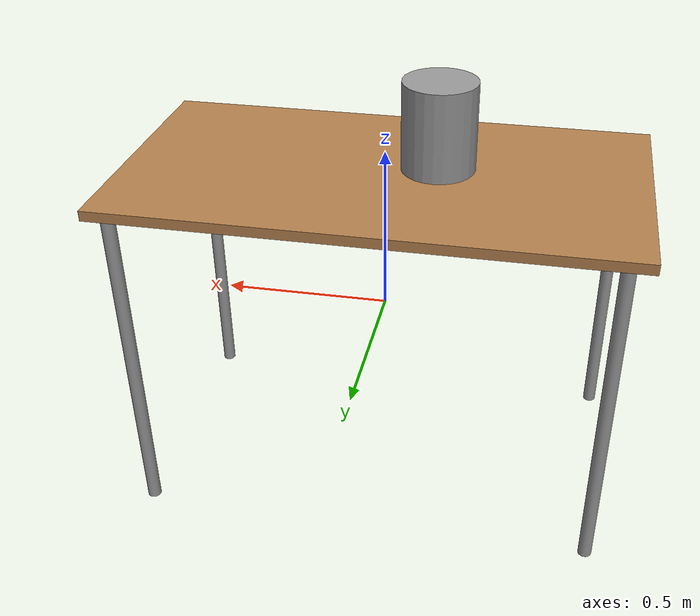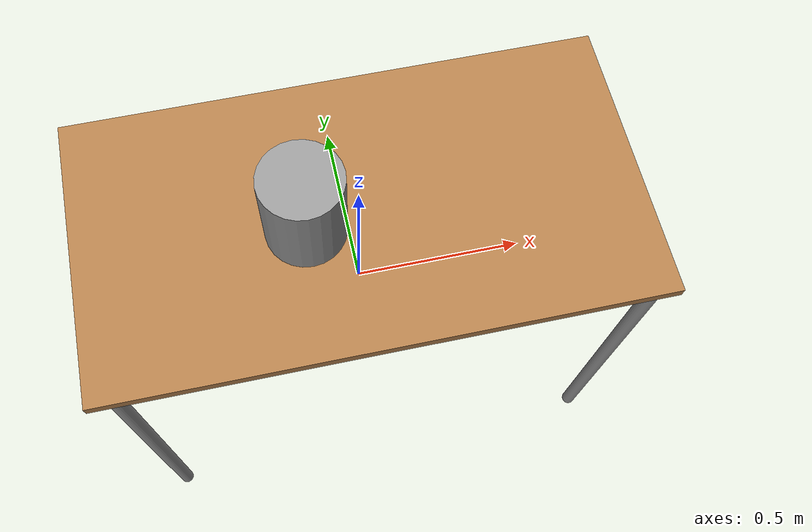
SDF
<?xml version='1.0'?>
<sdf version='1.7'>
  <model name='table'>
    <link name='link'>
      <self_collide>0</self_collide>
      <enable_wind>0</enable_wind>
      <kinematic>0</kinematic>
      <pose>0 0 -0.57074 0 -0 0</pose>
      <visual name='visual1'>
        <pose>0 0 1 0 -0 0</pose>
        <geometry>
          <box>
            <size>1.5 0.8 0.03</size>
          </box>
        </geometry>
        <material>
          <script>
            <uri>file://media/materials/scripts/gazebo.material</uri>
            <name>Gazebo/Wood</name>
          </script>
          <shader type='pixel'/>
        </material>
        <transparency>0</transparency>
        <cast_shadows>1</cast_shadows>
      </visual>
      <visual name='front_left_leg'>
        <pose>0.68 0.38 0.5 0 -0 0</pose>
        <geometry>
          <cylinder>
            <radius>0.02</radius>
            <length>1</length>
          </cylinder>
        </geometry>
        <material>
          <script>
            <uri>file://media/materials/scripts/gazebo.material</uri>
            <name>Gazebo/Grey</name>
          </script>
          <shader type='pixel'/>
        </material>
        <transparency>0</transparency>
        <cast_shadows>1</cast_shadows>
      </visual>
      <visual name='front_right_leg'>
        <pose>0.68 -0.38 0.5 0 -0 0</pose>
        <geometry>
          <cylinder>
            <radius>0.02</radius>
            <length>1</length>
          </cylinder>
        </geometry>
        <material>
          <script>
            <uri>file://media/materials/scripts/gazebo.material</uri>
            <name>Gazebo/Grey</name>
          </script>
          <shader type='pixel'/>
        </material>
        <transparency>0</transparency>
        <cast_shadows>1</cast_shadows>
      </visual>
      <visual name='back_right_leg'>
        <pose>-0.68 -0.38 0.5 0 -0 0</pose>
        <geometry>
          <cylinder>
            <radius>0.02</radius>
            <length>1</length>
          </cylinder>
        </geometry>
        <material>
          <script>
            <uri>file://media/materials/scripts/gazebo.material</uri>
            <name>Gazebo/Grey</name>
          </script>
          <shader type='pixel'/>
        </material>
        <transparency>0</transparency>
        <cast_shadows>1</cast_shadows>
      </visual>
      <visual name='back_left_leg'>
        <pose>-0.68 0.38 0.5 0 -0 0</pose>
        <geometry>
          <cylinder>
            <radius>0.02</radius>
            <length>1</length>
          </cylinder>
        </geometry>
        <material>
          <script>
            <uri>file://media/materials/scripts/gazebo.material</uri>
            <name>Gazebo/Grey</name>
          </script>
          <shader type='pixel'/>
        </material>
        <transparency>0</transparency>
        <cast_shadows>1</cast_shadows>
      </visual>
      <collision name='surface'>
        <laser_retro>0</laser_retro>
        <max_contacts>10</max_contacts>
        <pose>0 0 1 0 -0 0</pose>
        <geometry>
          <box>
            <size>1.5 0.8 0.03</size>
          </box>
        </geometry>
        <surface>
          <friction>
            <ode>
              <mu>0.6</mu>
              <mu2>0.6</mu2>
              <fdir1>0 0 0</fdir1>
              <slip1>0</slip1>
              <slip2>0</slip2>
            </ode>
            <torsional>
              <coefficient>1</coefficient>
              <patch_radius>0</patch_radius>
              <surface_radius>0</surface_radius>
              <use_patch_radius>1</use_patch_radius>
              <ode>
                <slip>0</slip>
              </ode>
            </torsional>
          </friction>
          <bounce>
            <restitution_coefficient>0</restitution_coefficient>
            <threshold>1e+06</threshold>
          </bounce>
          <contact>
            <collide_without_contact>0</collide_without_contact>
            <collide_without_contact_bitmask>1</collide_without_contact_bitmask>
            <collide_bitmask>1</collide_bitmask>
            <ode>
              <soft_cfm>0</soft_cfm>
              <soft_erp>0.2</soft_erp>
              <kp>1e+13</kp>
              <kd>1</kd>
              <max_vel>0.01</max_vel>
              <min_depth>0</min_depth>
            </ode>
            <bullet>
              <split_impulse>1</split_impulse>
              <split_impulse_penetration_threshold>-0.01</split_impulse_penetration_threshold>
              <soft_cfm>0</soft_cfm>
              <soft_erp>0.2</soft_erp>
              <kp>1e+13</kp>
              <kd>1</kd>
            </bullet>
          </contact>
        </surface>
      </collision>
      <collision name='front_left_leg'>
        <laser_retro>0</laser_retro>
        <max_contacts>10</max_contacts>
        <pose>0.68 0.38 0.5 0 -0 0</pose>
        <geometry>
          <cylinder>
            <radius>0.02</radius>
            <length>1</length>
          </cylinder>
        </geometry>
        <surface>
          <friction>
            <ode>
              <mu>1</mu>
              <mu2>1</mu2>
              <fdir1>0 0 0</fdir1>
              <slip1>0</slip1>
              <slip2>0</slip2>
            </ode>
            <torsional>
              <coefficient>1</coefficient>
              <patch_radius>0</patch_radius>
              <surface_radius>0</surface_radius>
              <use_patch_radius>1</use_patch_radius>
              <ode>
                <slip>0</slip>
              </ode>
            </torsional>
          </friction>
          <bounce>
            <restitution_coefficient>0</restitution_coefficient>
            <threshold>1e+06</threshold>
          </bounce>
          <contact>
            <collide_without_contact>0</collide_without_contact>
            <collide_without_contact_bitmask>1</collide_without_contact_bitmask>
            <collide_bitmask>1</collide_bitmask>
            <ode>
              <soft_cfm>0</soft_cfm>
              <soft_erp>0.2</soft_erp>
              <kp>1e+13</kp>
              <kd>1</kd>
              <max_vel>0.01</max_vel>
              <min_depth>0</min_depth>
            </ode>
            <bullet>
              <split_impulse>1</split_impulse>
              <split_impulse_penetration_threshold>-0.01</split_impulse_penetration_threshold>
              <soft_cfm>0</soft_cfm>
              <soft_erp>0.2</soft_erp>
              <kp>1e+13</kp>
              <kd>1</kd>
            </bullet>
          </contact>
        </surface>
      </collision>
      <collision name='front_right_leg'>
        <laser_retro>0</laser_retro>
        <max_contacts>10</max_contacts>
        <pose>0.68 -0.38 0.5 0 -0 0</pose>
        <geometry>
          <cylinder>
            <radius>0.02</radius>
            <length>1</length>
          </cylinder>
        </geometry>
        <surface>
          <friction>
            <ode>
              <mu>1</mu>
              <mu2>1</mu2>
              <fdir1>0 0 0</fdir1>
              <slip1>0</slip1>
              <slip2>0</slip2>
            </ode>
            <torsional>
              <coefficient>1</coefficient>
              <patch_radius>0</patch_radius>
              <surface_radius>0</surface_radius>
              <use_patch_radius>1</use_patch_radius>
              <ode>
                <slip>0</slip>
              </ode>
            </torsional>
          </friction>
          <bounce>
            <restitution_coefficient>0</restitution_coefficient>
            <threshold>1e+06</threshold>
          </bounce>
          <contact>
            <collide_without_contact>0</collide_without_contact>
            <collide_without_contact_bitmask>1</collide_without_contact_bitmask>
            <collide_bitmask>1</collide_bitmask>
            <ode>
              <soft_cfm>0</soft_cfm>
              <soft_erp>0.2</soft_erp>
              <kp>1e+13</kp>
              <kd>1</kd>
              <max_vel>0.01</max_vel>
              <min_depth>0</min_depth>
            </ode>
            <bullet>
              <split_impulse>1</split_impulse>
              <split_impulse_penetration_threshold>-0.01</split_impulse_penetration_threshold>
              <soft_cfm>0</soft_cfm>
              <soft_erp>0.2</soft_erp>
              <kp>1e+13</kp>
              <kd>1</kd>
            </bullet>
          </contact>
        </surface>
      </collision>
      <collision name='back_right_leg'>
        <laser_retro>0</laser_retro>
        <max_contacts>10</max_contacts>
        <pose>-0.68 -0.38 0.5 0 -0 0</pose>
        <geometry>
          <cylinder>
            <radius>0.02</radius>
            <length>1</length>
          </cylinder>
        </geometry>
        <surface>
          <friction>
            <ode>
              <mu>1</mu>
              <mu2>1</mu2>
              <fdir1>0 0 0</fdir1>
              <slip1>0</slip1>
              <slip2>0</slip2>
            </ode>
            <torsional>
              <coefficient>1</coefficient>
              <patch_radius>0</patch_radius>
              <surface_radius>0</surface_radius>
              <use_patch_radius>1</use_patch_radius>
              <ode>
                <slip>0</slip>
              </ode>
            </torsional>
          </friction>
          <bounce>
            <restitution_coefficient>0</restitution_coefficient>
            <threshold>1e+06</threshold>
          </bounce>
          <contact>
            <collide_without_contact>0</collide_without_contact>
            <collide_without_contact_bitmask>1</collide_without_contact_bitmask>
            <collide_bitmask>1</collide_bitmask>
            <ode>
              <soft_cfm>0</soft_cfm>
              <soft_erp>0.2</soft_erp>
              <kp>1e+13</kp>
              <kd>1</kd>
              <max_vel>0.01</max_vel>
              <min_depth>0</min_depth>
            </ode>
            <bullet>
              <split_impulse>1</split_impulse>
              <split_impulse_penetration_threshold>-0.01</split_impulse_penetration_threshold>
              <soft_cfm>0</soft_cfm>
              <soft_erp>0.2</soft_erp>
              <kp>1e+13</kp>
              <kd>1</kd>
            </bullet>
          </contact>
        </surface>
      </collision>
      <collision name='back_left_leg'>
        <laser_retro>0</laser_retro>
        <max_contacts>10</max_contacts>
        <pose>-0.68 0.38 0.5 0 -0 0</pose>
        <geometry>
          <cylinder>
            <radius>0.02</radius>
            <length>1</length>
          </cylinder>
        </geometry>
        <surface>
          <friction>
            <ode>
              <mu>1</mu>
              <mu2>1</mu2>
              <fdir1>0 0 0</fdir1>
              <slip1>0</slip1>
              <slip2>0</slip2>
            </ode>
            <torsional>
              <coefficient>1</coefficient>
              <patch_radius>0</patch_radius>
              <surface_radius>0</surface_radius>
              <use_patch_radius>1</use_patch_radius>
              <ode>
                <slip>0</slip>
              </ode>
            </torsional>
          </friction>
          <bounce>
            <restitution_coefficient>0</restitution_coefficient>
            <threshold>1e+06</threshold>
          </bounce>
          <contact>
            <collide_without_contact>0</collide_without_contact>
            <collide_without_contact_bitmask>1</collide_without_contact_bitmask>
            <collide_bitmask>1</collide_bitmask>
            <ode>
              <soft_cfm>0</soft_cfm>
              <soft_erp>0.2</soft_erp>
              <kp>1e+13</kp>
              <kd>1</kd>
              <max_vel>0.01</max_vel>
              <min_depth>0</min_depth>
            </ode>
            <bullet>
              <split_impulse>1</split_impulse>
              <split_impulse_penetration_threshold>-0.01</split_impulse_penetration_threshold>
              <soft_cfm>0</soft_cfm>
              <soft_erp>0.2</soft_erp>
              <kp>1e+13</kp>
              <kd>1</kd>
            </bullet>
          </contact>
        </surface>
      </collision>
    </link>
    <link name='link_0'>
      <inertial>
        <mass>0.0119566</mass>
        <inertia>
          <ixx>0.000101162</ixx>
          <ixy>0</ixy>
          <ixz>0</ixz>
          <iyy>0.000101162</iyy>
          <iyz>0</iyz>
          <izz>6.91386e-05</izz>
        </inertia>
        <pose>0 0 0 0 -0 0</pose>
      </inertial>
      <pose>-0.146445 -0.038954 0.57403 0 -0 0</pose>
      <visual name='visual'>
        <pose>0 0 0 0 -0 0</pose>
        <geometry>
          <cylinder>
            <radius>0.10754</radius>
            <length>0.258524</length>
          </cylinder>
        </geometry>
        <material>
          <lighting>1</lighting>
          <script>
            <uri>file://media/materials/scripts/gazebo.material</uri>
            <name>Gazebo/Grey</name>
          </script>
          <shader type='pixel'/>
        </material>
        <transparency>0</transparency>
        <cast_shadows>1</cast_shadows>
      </visual>
      <collision name='collision'>
        <laser_retro>0</laser_retro>
        <max_contacts>10</max_contacts>
        <pose>0 0 0 0 -0 0</pose>
        <geometry>
          <cylinder>
            <radius>0.10754</radius>
            <length>0.258524</length>
          </cylinder>
        </geometry>
        <surface>
          <friction>
            <ode>
              <mu>1</mu>
              <mu2>1</mu2>
              <fdir1>0 0 0</fdir1>
              <slip1>0</slip1>
              <slip2>0</slip2>
            </ode>
            <torsional>
              <coefficient>1</coefficient>
              <patch_radius>0</patch_radius>
              <surface_radius>0</surface_radius>
              <use_patch_radius>1</use_patch_radius>
              <ode>
                <slip>0</slip>
              </ode>
            </torsional>
          </friction>
          <bounce>
            <restitution_coefficient>0</restitution_coefficient>
            <threshold>1e+06</threshold>
          </bounce>
          <contact>
            <collide_without_contact>0</collide_without_contact>
            <collide_without_contact_bitmask>1</collide_without_contact_bitmask>
            <collide_bitmask>1</collide_bitmask>
            <ode>
              <soft_cfm>0</soft_cfm>
              <soft_erp>0.2</soft_erp>
              <kp>1e+13</kp>
              <kd>1</kd>
              <max_vel>0.01</max_vel>
              <min_depth>0</min_depth>
            </ode>
            <bullet>
              <split_impulse>1</split_impulse>
              <split_impulse_penetration_threshold>-0.01</split_impulse_penetration_threshold>
              <soft_cfm>0</soft_cfm>
              <soft_erp>0.2</soft_erp>
              <kp>1e+13</kp>
              <kd>1</kd>
            </bullet>
          </contact>
        </surface>
      </collision>
    </link>
    <static>1</static>
    <allow_auto_disable>1</allow_auto_disable>
  </model>
</sdf>
